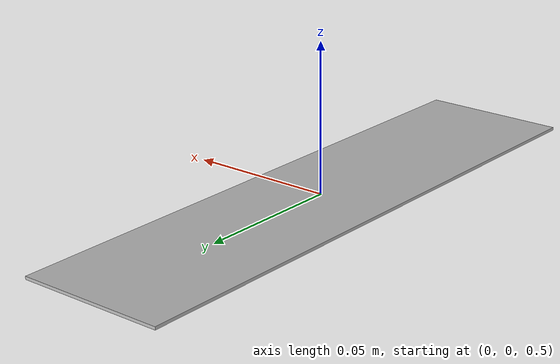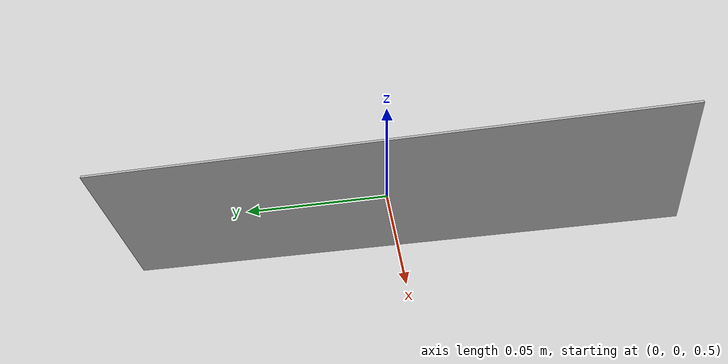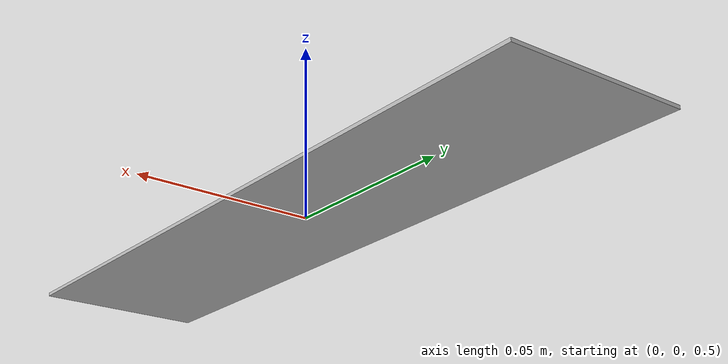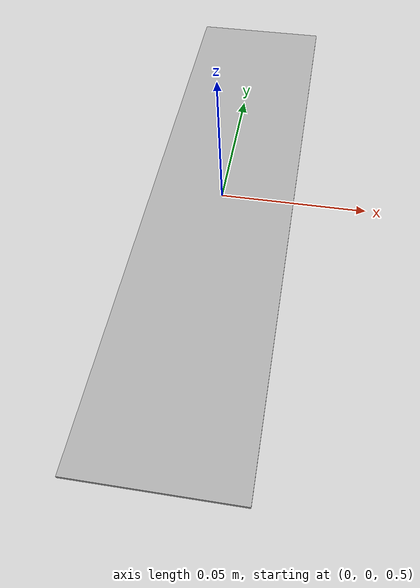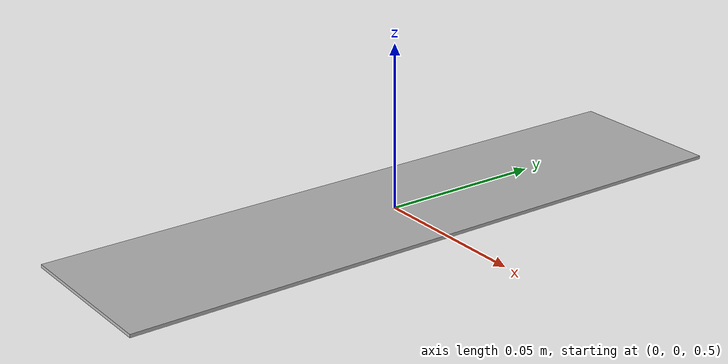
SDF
<?xml version='1.0'?>
<sdf version="1.4">
  <model name="my_model">
    <pose>0 0 0.5 0 0 0</pose>
    <static>true</static>
    <link name="link">
      <visual name="visual">
        <geometry>
          <box>
            <size>0.05 0.2 0.001</size>
          </box>
        </geometry>
        <material>
          <uri>model://example_model/materials/scripts</uri>
          <uri>model://example_model/materials/textures</uri>
          <name>stripe</name>
        </material>
      </visual>
    </link>
  </model>
</sdf>
